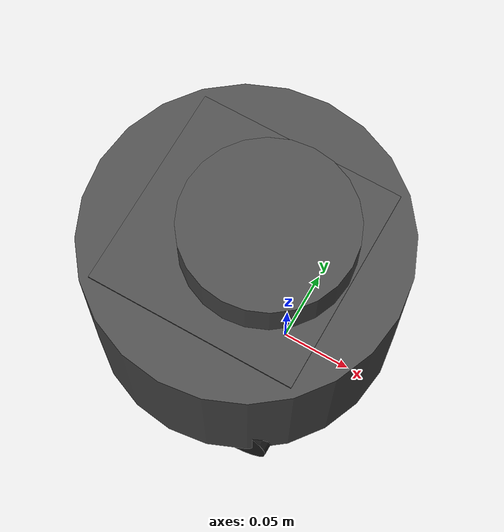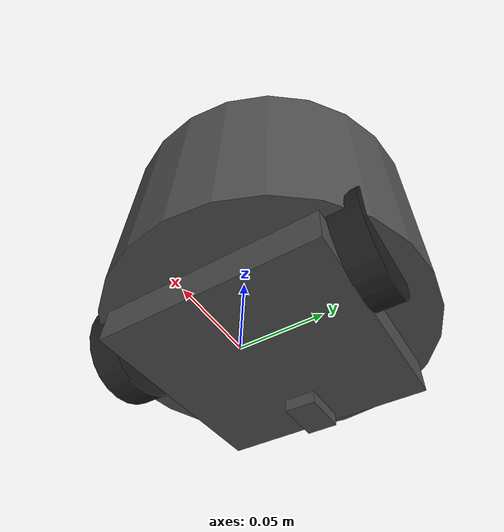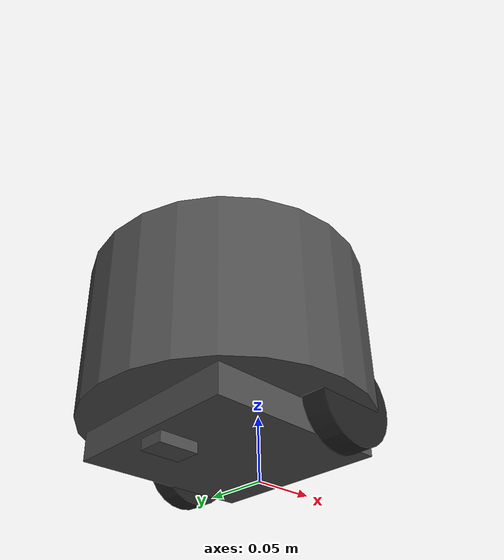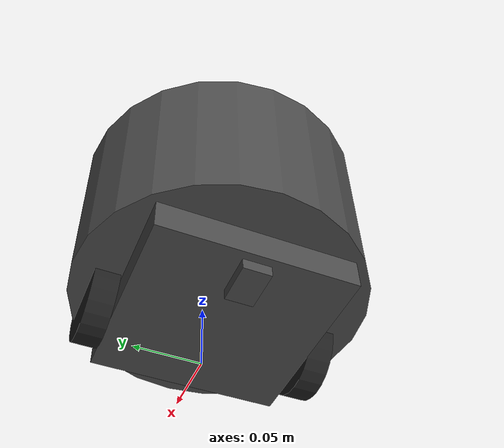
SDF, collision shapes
<sdf version='1.6'>
  <model name='robot'>
    <link name='base_footprint'>
      <pose frame=''>0 0 0 0 -0 0</pose>
      <inertial>
        <pose frame=''>-0.00429 0 0.030734 0 -0 0</pose>
        <mass>0.944735</mass>
        <inertia>
          <ixx>0.00717897</ixx>
          <ixy>-1.22841e-05</ixy>
          <ixz>0.00057675</ixz>
          <iyy>0.00721805</iyy>
          <iyz>-5.00209e-06</iyz>
          <izz>0.00413859</izz>
        </inertia>
      </inertial>
      <collision name='base_footprint_fixed_joint_lump__base_link_collision'>
        <pose frame=''>-0.032 0 0.08 0 -0 0</pose>
        <geometry>
          <box>
            <size>0.14 0.14 0.143</size>
          </box>
        </geometry>
        <surface>
          <contact>
            <ode/>
          </contact>
          <friction>
            <ode/>
          </friction>
        </surface>
      </collision>
      <collision name='base_footprint_fixed_joint_lump__base_collision_collision_1'>
        <pose frame=''>-0.032 0 0.09 0 -0 0</pose>
        <geometry>
          <cylinder>
            <length>0.12</length>
            <radius>0.105</radius>
          </cylinder>
        </geometry>
      </collision>
      <collision name='base_footprint_fixed_joint_lump__caster_back_link_collision_2'>
        <pose frame=''>-0.081 1e-06 0.005 -1.57 0 0</pose>
        <geometry>
          <box>
            <size>0.03 0.009 0.02</size>
          </box>
        </geometry>
        <surface>
          <contact>
            <ode>
              <kp>1e+06</kp>
              <kd>100</kd>
              <max_vel>1</max_vel>
              <min_depth>0.001</min_depth>
            </ode>
          </contact>
          <friction>
            <ode>
              <mu>0.1</mu>
              <mu2>0.1</mu2>
            </ode>
          </friction>
        </surface>
      </collision>
      <collision name='base_footprint_fixed_joint_lump__base_scan_collision_3'>
        <pose frame=''>-0.017 0 0.1755 0 -0 0</pose>
        <geometry>
          <cylinder>
            <length>0.0315</length>
            <radius>0.055</radius>
          </cylinder>
        </geometry>
        <surface>
          <contact>
            <ode/>
          </contact>
          <friction>
            <ode/>
          </friction>
        </surface>
      </collision>
      <visual name='base_footprint_fixed_joint_lump__base_link_visual'>
        <pose frame=''>-0.032 0 0.01 0 -0 0</pose>
        <geometry>
          <mesh>
            <scale>0.001 0.001 0.001</scale>
            <uri>model://robot_creator/meshes/bases/base.stl</uri>
          </mesh>
        </geometry>
        <material>
          <script>
            <name>Gazebo/DarkGrey</name>
            <uri>file://media/materials/scripts/gazebo.material</uri>
          </script>
        </material>
      </visual>
      <visual name='base_footprint_fixed_joint_lump__bumper_link_visual_1'>
        <pose frame=''>-0.032 0 0.09 0 -0 0</pose>
        <geometry>
          <cylinder>
            <length>0.12</length>
            <radius>0.105</radius>
          </cylinder>
        </geometry>
        <material>
          <script>
            <name>Gazebo/FlatBlack</name>
            <uri>file://media/materials/scripts/gazebo.material</uri>
          </script>
        </material>
      </visual>
      <visual name='base_footprint_fixed_joint_lump__base_scan_visual_2'>
        <pose frame=''>-0.032 0 0.182 0 -0 0</pose>
        <geometry>
          <mesh>
            <scale>0.001 0.001 0.001</scale>
            <uri>model://robot_creator/meshes/sensors/lds.stl</uri>
          </mesh>
        </geometry>
        <material>
          <script>
            <name>Gazebo/FlatBlack</name>
            <uri>file://media/materials/scripts/gazebo.material</uri>
          </script>
        </material>
      </visual>
      <velocity_decay/>
      <velocity_decay/>
      <self_collide>0</self_collide>
      <sensor name='contacts' type='contact'>
        <contact>
          <collision>base_footprint_fixed_joint_lump__base_collision_collision_1</collision>
          <topic>__default_topic__</topic>
        </contact>
        <plugin name='gazebo_ros_bumper_controller' filename='libgazebo_ros_bumper.so'>
          <always_on>1</always_on>
          <bumperTopicName>bumper_states</bumperTopicName>
          <frameName>bumper_link</frameName>
          <visualize>1</visualize>
          <update_rate>50.0</update_rate>
        </plugin>
        <pose frame=''>-0.032 0 0.09 0 -0 0</pose>
      </sensor>
      <velocity_decay/>
      <gravity>1</gravity>
      <velocity_decay/>
      <sensor name='imu' type='imu'>
        <always_on>1</always_on>
        <visualize>0</visualize>
        <pose frame=''>-0.032 0 0.078 0 -0 0</pose>
      </sensor>
      <gravity>1</gravity>
      <velocity_decay/>
      <sensor name='lds_lfcd_sensor' type='ray'>
        <visualize>0</visualize>
        <update_rate>5</update_rate>
        <ray>
          <scan>
            <horizontal>
              <samples>360</samples>
              <resolution>1</resolution>
              <min_angle>0</min_angle>
              <max_angle>6.28319</max_angle>
            </horizontal>
          </scan>
          <range>
            <min>0.12</min>
            <max>8</max>
            <resolution>0.015</resolution>
          </range>
          <noise>
            <type>gaussian</type>
            <mean>0</mean>
            <stddev>0.01</stddev>
          </noise>
        </ray>
        <plugin name='gazebo_ros_lds_lfcd_controller' filename='libgazebo_ros_laser.so'>
          <topicName>scan</topicName>
          <frameName>base_scan</frameName>
        </plugin>
        <pose frame=''>-0.032 0 0.182 0 -0 0</pose>
      </sensor>
    </link>
    <link name='wheel_left_link'>
      <pose frame=''>0 0.08 0.033 -1.57 0 0</pose>
      <inertial>
        <pose frame=''>0 0 0 0 -0 0</pose>
        <mass>0.0284989</mass>
        <inertia>
          <ixx>1.11756e-05</ixx>
          <ixy>-4.23698e-11</ixy>
          <ixz>-5.93817e-09</ixz>
          <iyy>1.11924e-05</iyy>
          <iyz>-1.44001e-11</iyz>
          <izz>2.07126e-05</izz>
        </inertia>
      </inertial>
      <collision name='wheel_left_link_collision'>
        <pose frame=''>0 0 0 0 -0 0</pose>
        <geometry>
          <cylinder>
            <length>0.018</length>
            <radius>0.033</radius>
          </cylinder>
        </geometry>
        <surface>
          <contact>
            <ode>
              <kp>500000</kp>
              <kd>10</kd>
              <max_vel>0.1</max_vel>
              <min_depth>0.001</min_depth>
            </ode>
          </contact>
          <friction>
            <ode>
              <mu>0.1</mu>
              <mu2>0.1</mu2>
              <fdir1>1 0 0</fdir1>
            </ode>
          </friction>
        </surface>
      </collision>
      <visual name='wheel_left_link_visual'>
        <pose frame=''>0 0 0 1.57 -0 0</pose>
        <geometry>
          <mesh>
            <scale>0.001 0.001 0.001</scale>
            <uri>model://robot_creator/meshes/wheels/left_tire.stl</uri>
          </mesh>
        </geometry>
        <material>
          <script>
            <name>Gazebo/FlatBlack</name>
            <uri>file://media/materials/scripts/gazebo.material</uri>
          </script>
        </material>
      </visual>
      <gravity>1</gravity>
      <velocity_decay/>
    </link>
    <joint name='wheel_left_joint' type='revolute'>
      <child>wheel_left_link</child>
      <parent>base_footprint</parent>
      <axis>
        <xyz>0 1 0.000796</xyz>
        <limit>
          <lower>-1e+16</lower>
          <upper>1e+16</upper>
        </limit>
        <dynamics>
          <spring_reference>0</spring_reference>
          <spring_stiffness>0</spring_stiffness>
        </dynamics>
        <use_parent_model_frame>1</use_parent_model_frame>
      </axis>
    </joint>
    <link name='wheel_right_link'>
      <pose frame=''>0 -0.08 0.033 -1.57 0 0</pose>
      <inertial>
        <pose frame=''>0 0 0 0 -0 0</pose>
        <mass>0.0284989</mass>
        <inertia>
          <ixx>1.11756e-05</ixx>
          <ixy>-4.23698e-11</ixy>
          <ixz>-5.93817e-09</ixz>
          <iyy>1.11924e-05</iyy>
          <iyz>-1.44001e-11</iyz>
          <izz>2.07126e-05</izz>
        </inertia>
      </inertial>
      <collision name='wheel_right_link_collision'>
        <pose frame=''>0 0 0 0 -0 0</pose>
        <geometry>
          <cylinder>
            <length>0.018</length>
            <radius>0.033</radius>
          </cylinder>
        </geometry>
        <surface>
          <contact>
            <ode>
              <kp>500000</kp>
              <kd>10</kd>
              <max_vel>0.1</max_vel>
              <min_depth>0.001</min_depth>
            </ode>
          </contact>
          <friction>
            <ode>
              <mu>0.1</mu>
              <mu2>0.1</mu2>
              <fdir1>1 0 0</fdir1>
            </ode>
          </friction>
        </surface>
      </collision>
      <visual name='wheel_right_link_visual'>
        <pose frame=''>0 0 0 1.57 -0 0</pose>
        <geometry>
          <mesh>
            <scale>0.001 0.001 0.001</scale>
            <uri>model://robot_creator/meshes/wheels/right_tire.stl</uri>
          </mesh>
        </geometry>
        <material>
          <script>
            <name>Gazebo/FlatBlack</name>
            <uri>file://media/materials/scripts/gazebo.material</uri>
          </script>
        </material>
      </visual>
      <gravity>1</gravity>
      <velocity_decay/>
    </link>
    <joint name='wheel_right_joint' type='revolute'>
      <child>wheel_right_link</child>
      <parent>base_footprint</parent>
      <axis>
        <xyz>0 1 0.000796</xyz>
        <limit>
          <lower>-1e+16</lower>
          <upper>1e+16</upper>
        </limit>
        <dynamics>
          <spring_reference>0</spring_reference>
          <spring_stiffness>0</spring_stiffness>
        </dynamics>
        <use_parent_model_frame>1</use_parent_model_frame>
      </axis>
    </joint>
    <plugin name='robot_controller' filename='libgazebo_ros_diff_drive.so'>
      <commandTopic>cmd_vel</commandTopic>
      <odometryTopic>gazebo_odom</odometryTopic>
      <odometryFrame>gazebo_odom</odometryFrame>
      <odometrySource>world</odometrySource>
      <publishOdomTF>0</publishOdomTF>
      <robotBaseFrame>base_footprint</robotBaseFrame>
      <publishWheelTF>0</publishWheelTF>
      <publishTf>1</publishTf>
      <publishWheelJointState>1</publishWheelJointState>
      <legacyMode>0</legacyMode>
      <updateRate>30</updateRate>
      <leftJoint>wheel_left_joint</leftJoint>
      <rightJoint>wheel_right_joint</rightJoint>
      <wheelSeparation>0.160</wheelSeparation>
      <wheelDiameter>0.066</wheelDiameter>
      <wheelAcceleration>5</wheelAcceleration>
      <wheelTorque>100</wheelTorque>
      <rosDebugLevel>na</rosDebugLevel>
    </plugin>
    <static>0</static>
    <plugin name='imu_plugin' filename='libgazebo_ros_imu.so'>
      <alwaysOn>1</alwaysOn>
      <topicName>imu</topicName>
      <serviceName>imu_service</serviceName>
      <gaussianNoise>0.0</gaussianNoise>
      <updateRate>200</updateRate>
      <imu>
        <noise>
          <type>gaussian</type>
          <rate>
            <mean>0.0</mean>
            <stddev>2e-4</stddev>
            <bias_mean>0.0000075</bias_mean>
            <bias_stddev>0.0000008</bias_stddev>
          </rate>
          <accel>
            <mean>0.0</mean>
            <stddev>1.7e-2</stddev>
            <bias_mean>0.1</bias_mean>
            <bias_stddev>0.001</bias_stddev>
          </accel>
        </noise>
      </imu>
      <bodyName>base_footprint</bodyName>
      <frameName>base_footprint</frameName>
      <xyzOffset>0.064 0 -0.156</xyzOffset>
      <rpyOffset>0 -0 0</rpyOffset>
    </plugin>
  </model>
</sdf>
